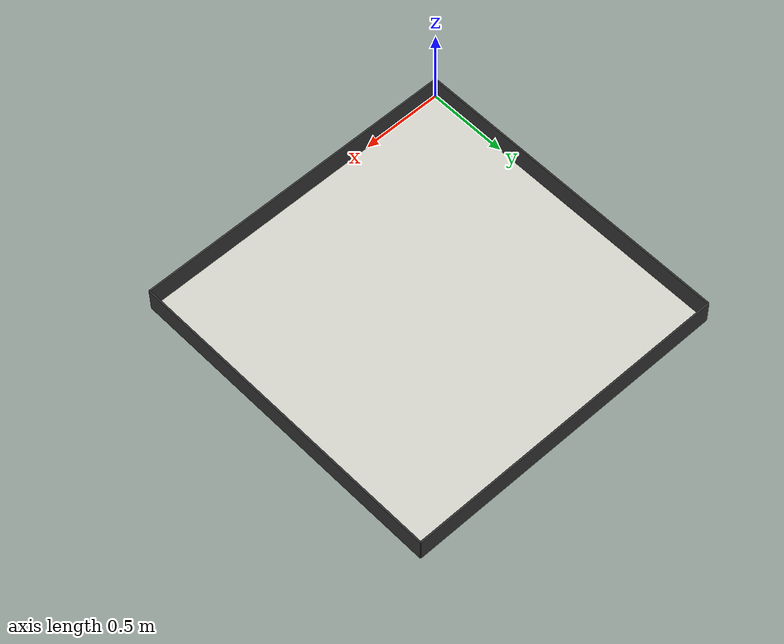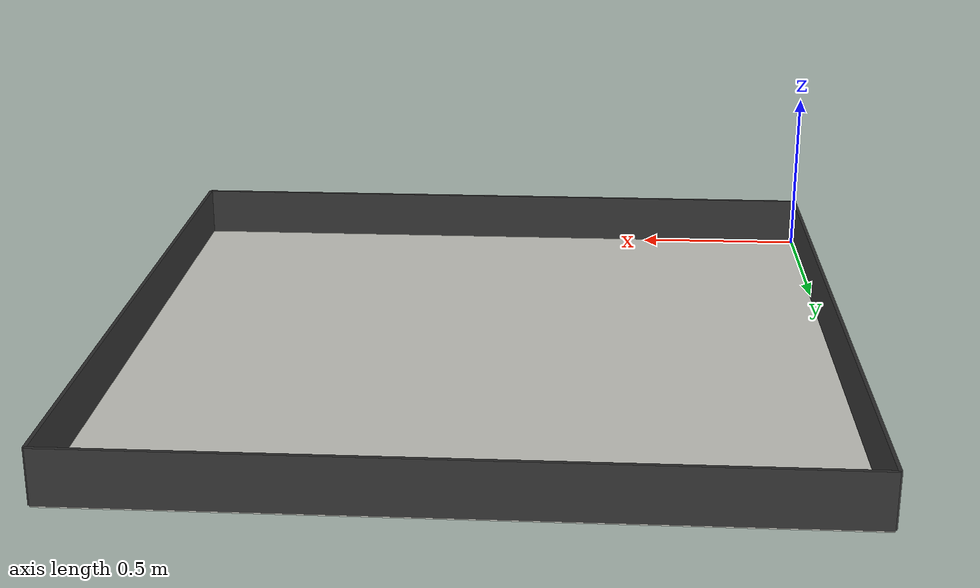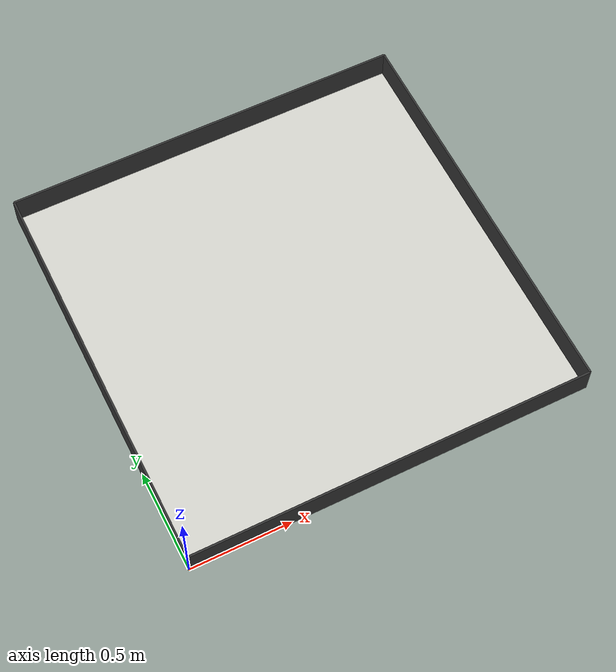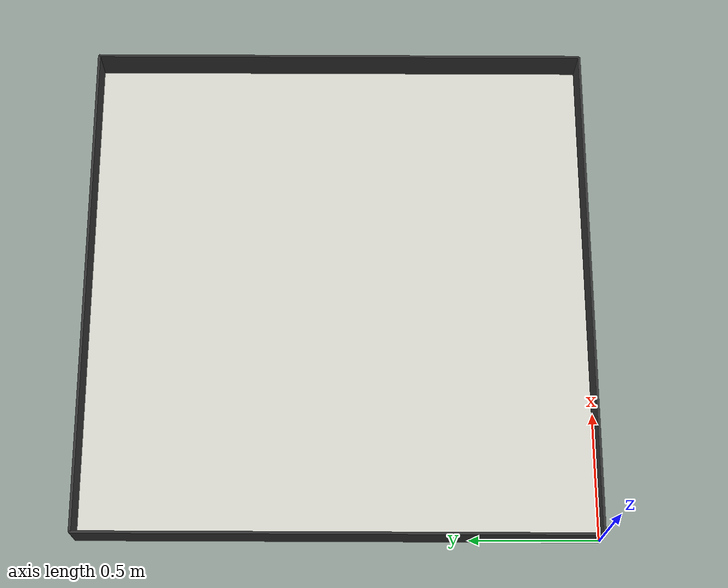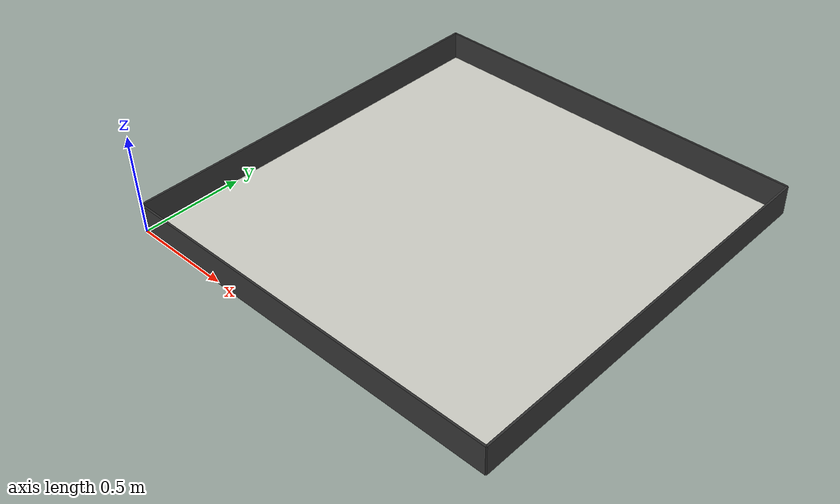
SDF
<?xml version="1.0" ?>
<sdf version="1.9">
  <world name="mdp_arena">
    <gui fullscreen="false">
      <plugin filename="MinimalScene" name="3D View">
        <gz-gui>
          <title>3D View</title>
          <property type="bool" key="showTitleBar">false</property>
          <property type="string" key="state">docked</property>
        </gz-gui>
        <engine>ogre2</engine>
        <scene>scene</scene>
        <ambient_light>0.4 0.4 0.4</ambient_light>
        <background_color>0.8 0.8 0.8</background_color>
        <camera_pose>1 -2.2 2.0 0 0.557 1.5708</camera_pose>
      </plugin>
      <plugin filename="EntityContextMenuPlugin" name="Entity context menu">
        <gz-gui>
          <property key="state" type="string">floating</property>
          <property key="width" type="double">5</property>
          <property key="height" type="double">5</property>
          <property key="showTitleBar" type="bool">false</property>
        </gz-gui>
      </plugin>
      <plugin filename="GzSceneManager" name="Scene Manager">
        <gz-gui>
          <property key="resizable" type="bool">false</property>
          <property key="width" type="double">5</property>
          <property key="height" type="double">5</property>
          <property key="state" type="string">floating</property>
          <property key="showTitleBar" type="bool">false</property>
        </gz-gui>
      </plugin>
      <plugin filename="InteractiveViewControl" name="Interactive view control">
        <gz-gui>
          <property key="resizable" type="bool">false</property>
          <property key="width" type="double">5</property>
          <property key="height" type="double">5</property>
          <property key="state" type="string">floating</property>
          <property key="showTitleBar" type="bool">false</property>
        </gz-gui>
      </plugin>
      <plugin filename="CameraTracking" name="Camera Tracking">
        <gz-gui>
          <property key="resizable" type="bool">false</property>
          <property key="width" type="double">5</property>
          <property key="height" type="double">5</property>
          <property key="state" type="string">floating</property>
          <property key="showTitleBar" type="bool">false</property>
        </gz-gui>
      </plugin>
      <plugin filename="MarkerManager" name="Marker manager">
        <gz-gui>
          <property key="resizable" type="bool">false</property>
          <property key="width" type="double">5</property>
          <property key="height" type="double">5</property>
          <property key="state" type="string">floating</property>
          <property key="showTitleBar" type="bool">false</property>
        </gz-gui>
      </plugin>
      <plugin filename="SelectEntities" name="Select Entities">
        <gz-gui>
          <property key="resizable" type="bool">false</property>
          <property key="width" type="double">5</property>
          <property key="height" type="double">5</property>
          <property key="state" type="string">floating</property>
          <property key="showTitleBar" type="bool">false</property>
        </gz-gui>
      </plugin>
      <plugin filename="Spawn" name="Spawn Entities">
        <gz-gui>
          <property key="resizable" type="bool">false</property>
          <property key="width" type="double">5</property>
          <property key="height" type="double">5</property>
          <property key="state" type="string">floating</property>
          <property key="showTitleBar" type="bool">false</property>
        </gz-gui>
      </plugin>
      <plugin filename="VisualizationCapabilities" name="Visualization Capabilities">
        <gz-gui>
          <property key="resizable" type="bool">false</property>
          <property key="width" type="double">5</property>
          <property key="height" type="double">5</property>
          <property key="state" type="string">floating</property>
          <property key="showTitleBar" type="bool">false</property>
        </gz-gui>
      </plugin>
      <plugin filename="WorldControl" name="World control">
        <gz-gui>
          <title>World control</title>
          <property type="bool" key="showTitleBar">false</property>
          <property type="bool" key="resizable">false</property>
          <property type="double" key="height">72</property>
          <property type="double" key="z">1</property>
          <property type="string" key="state">floating</property>
          <anchors target="3D View">
            <line own="left" target="left"/>
            <line own="bottom" target="bottom"/>
          </anchors>
        </gz-gui>
        <play_pause>true</play_pause>
        <step>true</step>
        <start_paused>true</start_paused>
        <use_event>true</use_event>
      </plugin>
      <plugin filename="WorldStats" name="World stats">
        <gz-gui>
          <title>World stats</title>
          <property type="bool" key="showTitleBar">false</property>
          <property type="bool" key="resizable">false</property>
          <property type="double" key="height">110</property>
          <property type="double" key="width">290</property>
          <property type="double" key="z">1</property>
          <property type="string" key="state">floating</property>
          <anchors target="3D View">
            <line own="right" target="right"/>
            <line own="bottom" target="bottom"/>
          </anchors>
        </gz-gui>
        <sim_time>true</sim_time>
        <real_time>true</real_time>
        <real_time_factor>true</real_time_factor>
        <iterations>true</iterations>
      </plugin>
      <plugin filename="ComponentInspector" name="Component inspector">
        <gz-gui>
          <property type="bool" key="showTitleBar">false</property>
          <property type="string" key="state">docked</property>
        </gz-gui>
      </plugin>
      <plugin filename="EntityTree" name="Entity tree">
        <gz-gui>
          <property type="bool" key="showTitleBar">false</property>
          <property type="string" key="state">docked</property>
        </gz-gui>
      </plugin>
    </gui>

    <physics name="1ms" type="ode">
      <max_step_size>0.001</max_step_size>
      <real_time_factor>1.0</real_time_factor>
    </physics>
    <plugin filename="gz-sim-physics-system" name="gz::sim::systems::Physics"/>
    <plugin filename="gz-sim-user-commands-system" name="gz::sim::systems::UserCommands"/>
    <plugin filename="gz-sim-scene-broadcaster-system" name="gz::sim::systems::SceneBroadcaster"/>
    <plugin filename="gz-sim-contact-system" name="gz::sim::systems::Contact"/>

    <light type="directional" name="sun">
      <cast_shadows>true</cast_shadows>
      <pose>1 1 10 0 0 0</pose>
      <diffuse>0.8 0.8 0.8 1</diffuse>
      <specular>0.2 0.2 0.2 1</specular>
      <direction>-0.3 0.3 -0.9</direction>
    </light>

    <!-- Floor: 2m x 2m, bottom-left corner at (0,0) -->
    <model name="arena_floor">
      <static>true</static>
      <pose>1.0 1.0 0 0 0 0</pose>
      <link name="link">
        <collision name="collision">
          <geometry>
            <box>
              <size>2.0 2.0 0.01</size>
            </box>
          </geometry>
        </collision>
        <visual name="visual">
          <geometry>
            <box>
              <size>2.0 2.0 0.01</size>
            </box>
          </geometry>
          <material>
            <ambient>0.85 0.85 0.82 1</ambient>
            <diffuse>0.85 0.85 0.82 1</diffuse>
          </material>
        </visual>
      </link>
    </model>

    <!-- Perimeter walls (0.15m tall, 0.01m thick) standing in for the arena's physical boundary -->
    <model name="wall_south">
      <static>true</static>
      <pose>1.0 0.0 0.075 0 0 0</pose>
      <link name="link">
        <collision name="collision"><geometry><box><size>2.0 0.01 0.15</size></box></geometry></collision>
        <visual name="visual"><geometry><box><size>2.0 0.01 0.15</size></box></geometry>
          <material><ambient>0.2 0.2 0.2 1</ambient><diffuse>0.2 0.2 0.2 1</diffuse></material>
        </visual>
      </link>
    </model>
    <model name="wall_north">
      <static>true</static>
      <pose>1.0 2.0 0.075 0 0 0</pose>
      <link name="link">
        <collision name="collision"><geometry><box><size>2.0 0.01 0.15</size></box></geometry></collision>
        <visual name="visual"><geometry><box><size>2.0 0.01 0.15</size></box></geometry>
          <material><ambient>0.2 0.2 0.2 1</ambient><diffuse>0.2 0.2 0.2 1</diffuse></material>
        </visual>
      </link>
    </model>
    <model name="wall_west">
      <static>true</static>
      <pose>0.0 1.0 0.075 0 0 1.5708</pose>
      <link name="link">
        <collision name="collision"><geometry><box><size>2.0 0.01 0.15</size></box></geometry></collision>
        <visual name="visual"><geometry><box><size>2.0 0.01 0.15</size></box></geometry>
          <material><ambient>0.2 0.2 0.2 1</ambient><diffuse>0.2 0.2 0.2 1</diffuse></material>
        </visual>
      </link>
    </model>
    <model name="wall_east">
      <static>true</static>
      <pose>2.0 1.0 0.075 0 0 1.5708</pose>
      <link name="link">
        <collision name="collision"><geometry><box><size>2.0 0.01 0.15</size></box></geometry></collision>
        <visual name="visual"><geometry><box><size>2.0 0.01 0.15</size></box></geometry>
          <material><ambient>0.2 0.2 0.2 1</ambient><diffuse>0.2 0.2 0.2 1</diffuse></material>
        </visual>
      </link>
    </model>
  </world>
</sdf>
